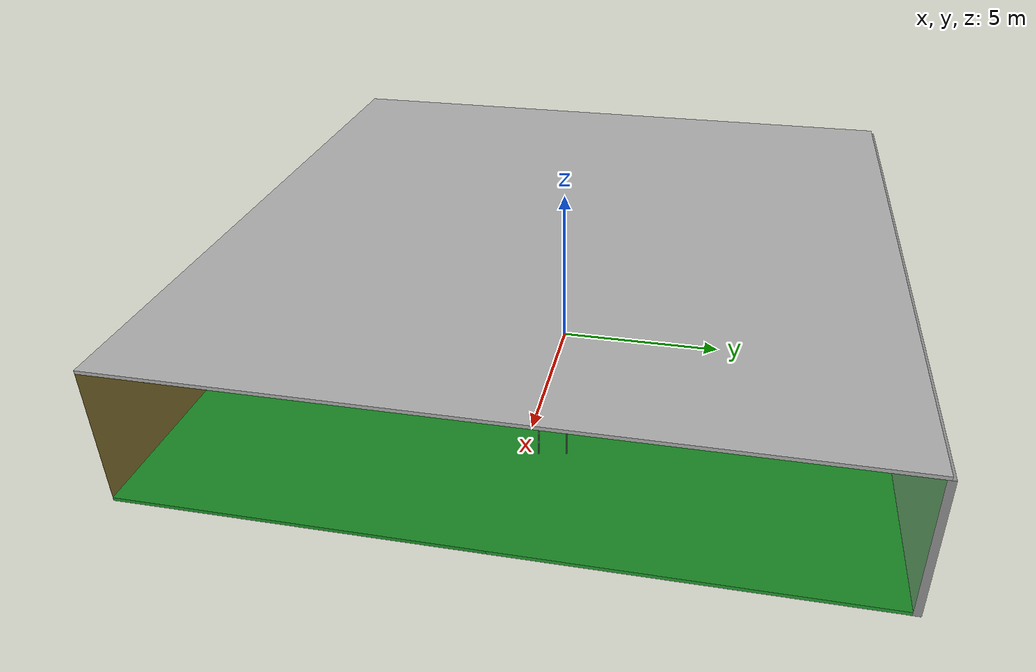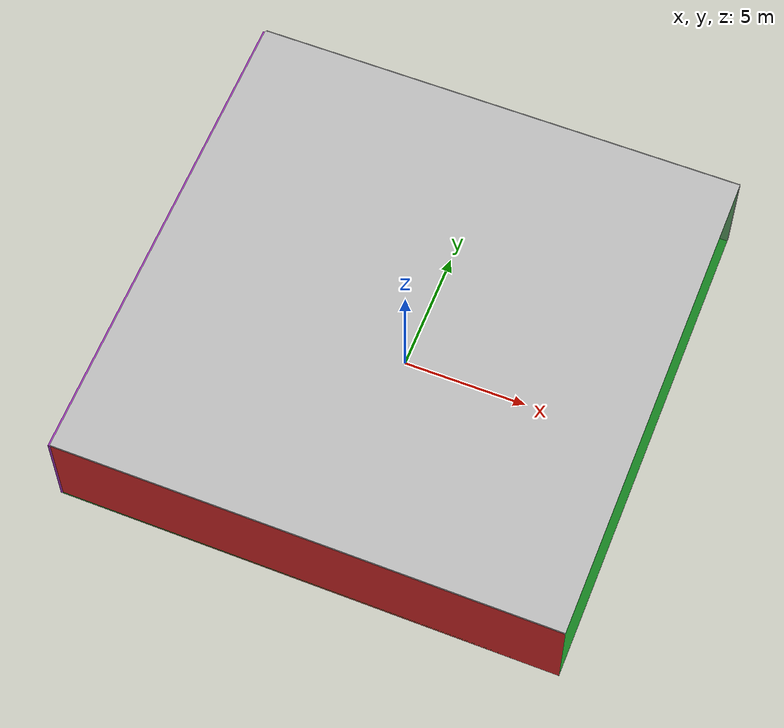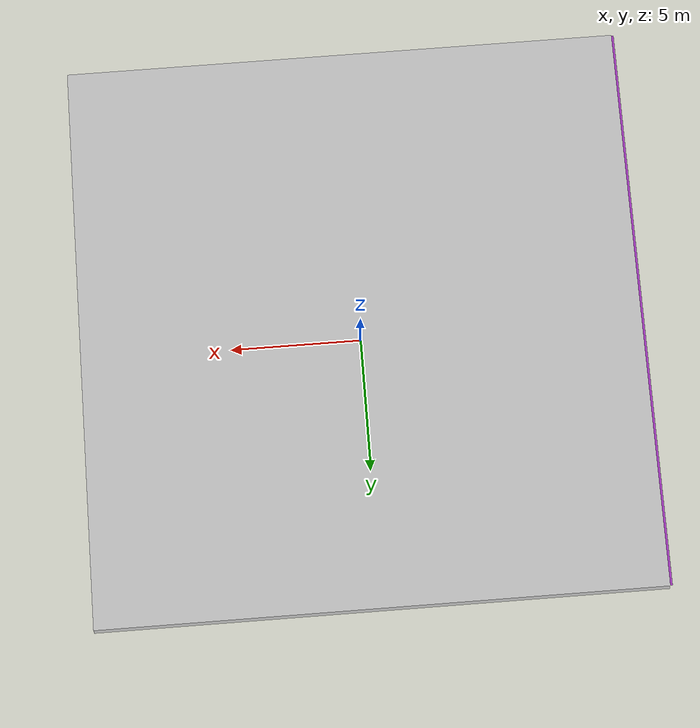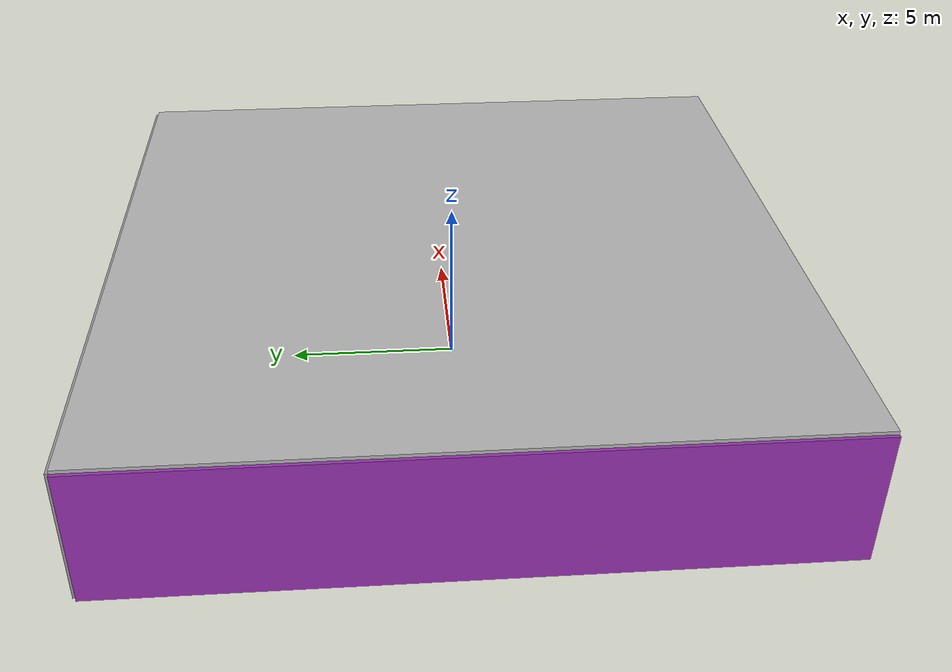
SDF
<sdf version="1.4">
 <world name="default">
  <physics type="ode">
   <max_step_size>0.001</max_step_size>
   <real_time_factor>1</real_time_factor>
   <real_time_update_rate>1000</real_time_update_rate>
   <gravity>0 0 -9.8</gravity>
  </physics>
  <scene><ambient>0.4 0.4 0.4 1</ambient><background>0.7 0.7 0.7 1</background><shadows>1</shadows></scene>
  <model name="Surrounding">
   <static>1</static>
   <link name="Ceiling">
    <collision name="Ceiling_Collision"><geometry><box><size>20 20 0.1</size></box></geometry></collision>
    <visual name="Ceiling_Visual">
     <geometry><box><size>20 20 0.1</size></box></geometry>
     <material>
      <script><uri>file://media/materials/scripts/gazebo.material</uri><name>Gazebo/JointAnchor</name></script>
     </material>
    </visual>
    <pose>0 0 4.05 0 0 0</pose>
   </link>
   <link name="Wall_South">
    <collision name="Wall_South_Collision">
     <geometry><box><size>20 0 4</size></box></geometry>
     <pose>0 0 2 0 -0 0</pose>
    </collision>
    <visual name="Wall_South_Visual">
     <pose>0 0 2 0 -0 0</pose>
     <geometry><box><size>20 0 4</size></box></geometry>
     <material>
      <script><uri>file://media/materials/scripts/gazebo.material</uri><name>Gazebo/RedBright</name></script>
     </material>
    </visual>
    <velocity_decay><linear>0</linear><angular>0</angular></velocity_decay>
    <pose>0 -10 0 0 -0 0</pose>
   </link>
   <link name="Wall_East">
    <collision name="Wall_21_Collision">
     <geometry><box><size>20 0 4</size></box></geometry>
     <pose>0 0 2 0 -0 0</pose>
    </collision>
    <visual name="Wall_21_Visual">
     <pose>0 0 2 0 -0 0</pose>
     <geometry><box><size>20 0 4</size></box></geometry>
     <material>
      <script><uri>file://media/materials/scripts/gazebo.material</uri><name>Gazebo/GreenTransparent</name></script>
     </material>
    </visual>
    <velocity_decay><linear>0</linear><angular>0</angular></velocity_decay>
    <pose>10 0 0 0 -0 1.5708</pose>
   </link>
   <link name="Wall_North">
    <collision name="Wall_22_Collision">
     <geometry><box><size>20 0.2 4</size></box></geometry>
     <pose>0 0 2 0 -0 0</pose>
    </collision>
    <visual name="Wall_22_Visual">
     <pose>0 0 2 0 -0 0</pose>
     <geometry><box><size>20 0.2 4</size></box></geometry>
     <material>
      <script><uri>file://media/materials/scripts/gazebo.material</uri><name>Gazebo/GreyGradientSky</name></script>
     </material>
    </visual>
    <velocity_decay><linear>0</linear><angular>0</angular></velocity_decay>
    <pose>0 10 0 0 -0 0</pose>
   </link>
   <link name="Wall_West">
    <collision name="Wall_23_Collision">
     <geometry><box><size>20 0.2 4</size></box></geometry>
     <pose>0 0 2 0 -0 0</pose>
    </collision>
    <visual name="Wall_23_Visual">
     <pose>0 0 2 0 -0 0</pose>
     <geometry><box><size>20 0.2 4</size></box></geometry>
     <material>
      <script><uri>file://media/materials/scripts/gazebo.material</uri><name>Gazebo/PurpleGlow</name></script>
     </material>
    </visual>
    <velocity_decay><linear>0</linear><angular>0</angular></velocity_decay>
    <pose>-10 0 0 0 0 -1.5708</pose>
   </link>
   <link name="Ground_link">
    <collision name="collision">
     <pose>0 0 .05 0 -0 0</pose>
     <geometry><box><size>20 20 0.1</size></box></geometry>
    </collision>
    <visual name="visual">
     <pose>0 0 .05 0 -0 0</pose>
     <geometry><box><size>20 20 0.1</size></box></geometry>
     <material>
      <script><uri>file://media/materials/scripts/gazebo.material</uri><name>Gazebo/GreenGlow</name></script>
     </material>
    </visual>
   </link>
   <static>1</static>
  </model>
  <spherical_coordinates>
   <surface_model>EARTH_WGS84</surface_model>
   <latitude_deg>0</latitude_deg>
   <longitude_deg>0</longitude_deg>
   <elevation>0</elevation>
   <heading_deg>0</heading_deg>
  </spherical_coordinates>
  <light name="lightball_0" type="diffuse">
   <diffuse>0.8 0.8 0.8 1</diffuse>
   <specular>0.2 0.2 0.2 1</specular>
   <attenuation>
    <range>100</range>
    <constant>0.7</constant>
    <linear>0.01</linear>
    <quadratic>0.001</quadratic>
   </attenuation>
   <direction>-0.5 0.1 -0.9</direction>
   <pose>7.79633286872 -4.03405807971 1.5779166588 0 0 0</pose>
  </light>
  <light name="lightball_1" type="diffuse">
   <diffuse>0.8 0.8 0.8 1</diffuse>
   <specular>0.2 0.2 0.2 1</specular>
   <attenuation>
    <range>100</range>
    <constant>0.7</constant>
    <linear>0.01</linear>
    <quadratic>0.001</quadratic>
   </attenuation>
   <direction>-0.5 0.1 -0.9</direction>
   <pose>3.29077996886 -9.70155382424 1.08695299353 0 0 0</pose>
  </light>
  <light name="lightball_2" type="diffuse">
   <diffuse>0.8 0.8 0.8 1</diffuse>
   <specular>0.2 0.2 0.2 1</specular>
   <attenuation>
    <range>100</range>
    <constant>0.7</constant>
    <linear>0.01</linear>
    <quadratic>0.001</quadratic>
   </attenuation>
   <direction>-0.5 0.1 -0.9</direction>
   <pose>-6.26315162946 -6.90243827725 2.87944916785 0 0 0</pose>
  </light>
  <light name="lightball_3" type="diffuse">
   <diffuse>0.8 0.8 0.8 1</diffuse>
   <specular>0.2 0.2 0.2 1</specular>
   <attenuation>
    <range>100</range>
    <constant>0.7</constant>
    <linear>0.01</linear>
    <quadratic>0.001</quadratic>
   </attenuation>
   <direction>-0.5 0.1 -0.9</direction>
   <pose>7.39976397552 3.13112284019 0.531724101658 0 0 0</pose>
  </light>
  <light name="lightball_4" type="diffuse">
   <diffuse>0.8 0.8 0.8 1</diffuse>
   <specular>0.2 0.2 0.2 1</specular>
   <attenuation>
    <range>100</range>
    <constant>0.7</constant>
    <linear>0.01</linear>
    <quadratic>0.001</quadratic>
   </attenuation>
   <direction>-0.5 0.1 -0.9</direction>
   <pose>-3.74673545419 0.41788883314 2.24768528576 0 0 0</pose>
  </light>
  <light name="lightball_5" type="diffuse">
   <diffuse>0.8 0.8 0.8 1</diffuse>
   <specular>0.2 0.2 0.2 1</specular>
   <attenuation>
    <range>100</range>
    <constant>0.7</constant>
    <linear>0.01</linear>
    <quadratic>0.001</quadratic>
   </attenuation>
   <direction>-0.5 0.1 -0.9</direction>
   <pose>-1.54542895955 -7.80952985326 1.88092678508 0 0 0</pose>
  </light>
  <light name="lightball_6" type="diffuse">
   <diffuse>0.8 0.8 0.8 1</diffuse>
   <specular>0.2 0.2 0.2 1</specular>
   <attenuation>
    <range>100</range>
    <constant>0.7</constant>
    <linear>0.01</linear>
    <quadratic>0.001</quadratic>
   </attenuation>
   <direction>-0.5 0.1 -0.9</direction>
   <pose>7.43688983159 -6.56504549753 0.6311313759 0 0 0</pose>
  </light>
  <light name="lightball_7" type="diffuse">
   <diffuse>0.8 0.8 0.8 1</diffuse>
   <specular>0.2 0.2 0.2 1</specular>
   <attenuation>
    <range>100</range>
    <constant>0.7</constant>
    <linear>0.01</linear>
    <quadratic>0.001</quadratic>
   </attenuation>
   <direction>-0.5 0.1 -0.9</direction>
   <pose>4.19662229246 -8.78881258547 3.88190303265 0 0 0</pose>
  </light>
  <include><uri>model://table</uri><pose>-3.72305687727 4.31037579361 0 0 0 2.10709691486</pose></include>
  <include><uri>model://table</uri><pose>-5.29193280029 7.74811146539 0 0 0 1.37723734373</pose></include>
  <include><uri>model://table</uri><pose>5.47726199677 0.72166896511 0 0 0 0.173475324101</pose></include>
 </world>
</sdf>

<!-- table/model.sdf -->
<sdf version="1.5">
  <model name="table">
    <static>true</static>
    <link name="link">
      <collision name="surface">
        <pose>0 0 1.0 0 0 0</pose>
        <geometry>
          <box>
            <size>1.5 0.8 0.03</size>
          </box>
        </geometry>
        <surface>
          <friction>
            <ode>
              <mu>0.6</mu>
              <mu2>0.6</mu2>
            </ode>
          </friction>
        </surface>
      </collision>
      <visual name="visual1">
        <pose>0 0 1.0 0 0 0</pose>
        <geometry>
          <box>
            <size>1.5 0.8 0.03</size>
          </box>
        </geometry>
        <material>
          <script>
            <uri>model://media/materials/scripts/gazebo.material</uri>
            <name>Gazebo/Wood</name>
          </script>
        </material>
      </visual>
      <collision name="front_left_leg">
        <pose>0.68 0.38 0.5 0 0 0</pose>
        <geometry>
          <cylinder>
            <radius>0.02</radius>
            <length>1.0</length>
          </cylinder>
        </geometry>
      </collision>
      <visual name="front_left_leg">
        <pose>0.68 0.38 0.5 0 0 0</pose>
        <geometry>
          <cylinder>
            <radius>0.02</radius>
            <length>1.0</length>
          </cylinder>
        </geometry>
        <material>
          <script>
            <uri>model://media/materials/scripts/gazebo.material</uri>
            <name>Gazebo/Grey</name>
          </script>
        </material>
      </visual>
      <collision name="front_right_leg">
        <pose>0.68 -0.38 0.5 0 0 0</pose>
        <geometry>
          <cylinder>
            <radius>0.02</radius>
            <length>1.0</length>
          </cylinder>
        </geometry>
      </collision>
      <visual name="front_right_leg">
        <pose>0.68 -0.38 0.5 0 0 0</pose>
        <geometry>
          <cylinder>
            <radius>0.02</radius>
            <length>1.0</length>
          </cylinder>
        </geometry>
        <material>
          <script>
            <uri>model://media/materials/scripts/gazebo.material</uri>
            <name>Gazebo/Grey</name>
          </script>
        </material>
      </visual>
      <collision name="back_right_leg">
        <pose>-0.68 -0.38 0.5 0 0 0</pose>
        <geometry>
          <cylinder>
            <radius>0.02</radius>
            <length>1.0</length>
          </cylinder>
        </geometry>
      </collision>
      <visual name="back_right_leg">
        <pose>-0.68 -0.38 0.5 0 0 0</pose>
        <geometry>
          <cylinder>
            <radius>0.02</radius>
            <length>1.0</length>
          </cylinder>
        </geometry>
        <material>
          <script>
            <uri>model://media/materials/scripts/gazebo.material</uri>
            <name>Gazebo/Grey</name>
          </script>
        </material>
      </visual>
      <collision name="back_left_leg">
        <pose>-0.68 0.38 0.5 0 0 0</pose>
        <geometry>
          <cylinder>
            <radius>0.02</radius>
            <length>1.0</length>
          </cylinder>
        </geometry>
      </collision>
      <visual name="back_left_leg">
        <pose>-0.68 0.38 0.5 0 0 0</pose>
        <geometry>
          <cylinder>
            <radius>0.02</radius>
            <length>1.0</length>
          </cylinder>
        </geometry>
        <material>
          <script>
            <uri>model://media/materials/scripts/gazebo.material</uri>
            <name>Gazebo/Grey</name>
          </script>
        </material>
      </visual>
    </link>
  </model>
</sdf>
